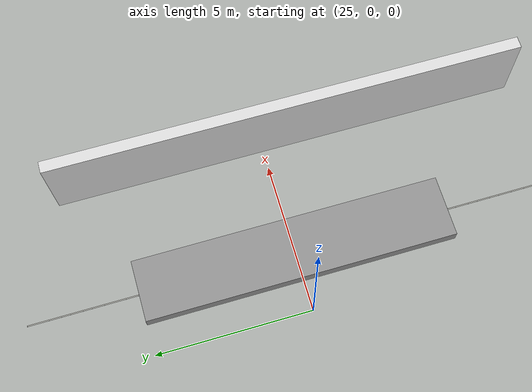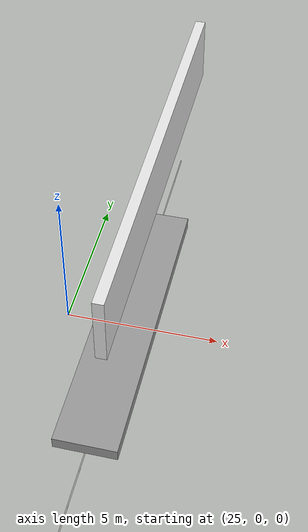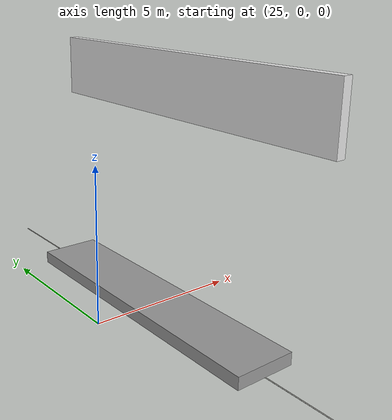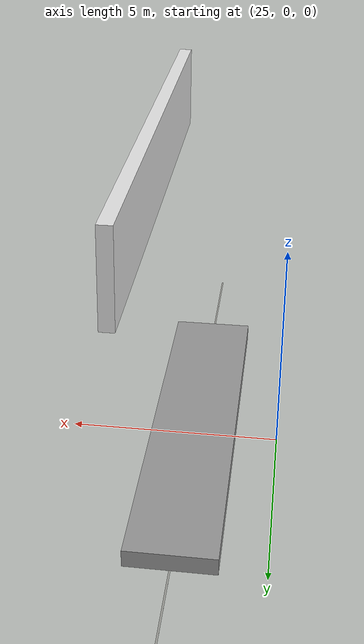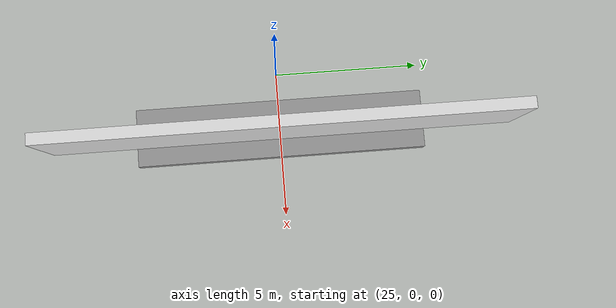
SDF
<sdf version="1.6">
 <world name="aws_industrial_warehouse">
  <model name="wall_east_hdr">
   <static>true</static>
   <pose>28 0 7 0 0 0</pose>
   <link name="l">
    <collision name="c">
     <geometry><box><size>0.3 12 2</size></box></geometry>
     <surface><friction><ode><mu>1.0</mu><mu2>1.0</mu2></ode></friction></surface>
    </collision>
    <visual name="v">
     <geometry><box><size>0.3 12 2</size></box></geometry>
     <material><ambient>0.85 0.85 0.85 1</ambient><diffuse>0.90 0.90 0.90 1</diffuse></material>
    </visual>
   </link>
  </model>
  <model name="dock_platform">
   <static>true</static>
   <pose>27 0 0.2 0 0 0</pose>
   <link name="l">
    <collision name="c">
     <geometry><box><size>2 10 0.4</size></box></geometry>
     <surface><friction><ode><mu>1.0</mu><mu2>1.0</mu2></ode></friction></surface>
    </collision>
    <visual name="v">
     <geometry><box><size>2 10 0.4</size></box></geometry>
     <material><ambient>0.55 0.55 0.55 1</ambient><diffuse>0.60 0.60 0.60 1</diffuse></material>
    </visual>
   </link>
  </model>
  <model name="jnt_NS_18">
   <static>true</static>
   <pose>27 0 0.001 0 0 0</pose>
   <link name="l">
    <visual name="v">
     <geometry><box><size>0.04 36.0 0.002</size></box></geometry>
     <material><ambient>0.58 0.58 0.57 1</ambient><diffuse>0.63 0.63 0.61 1</diffuse></material>
    </visual>
   </link>
  </model>
 </world>
</sdf>
